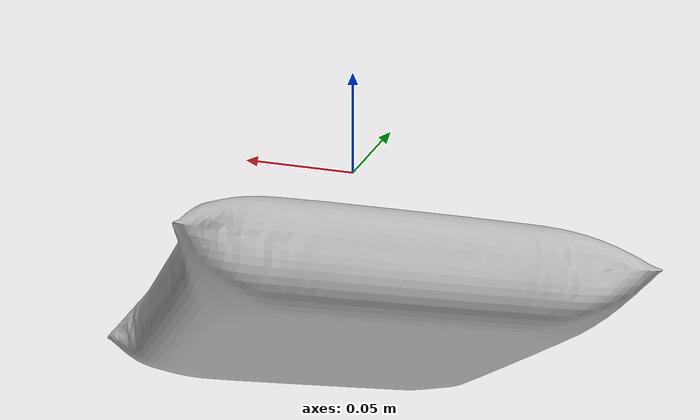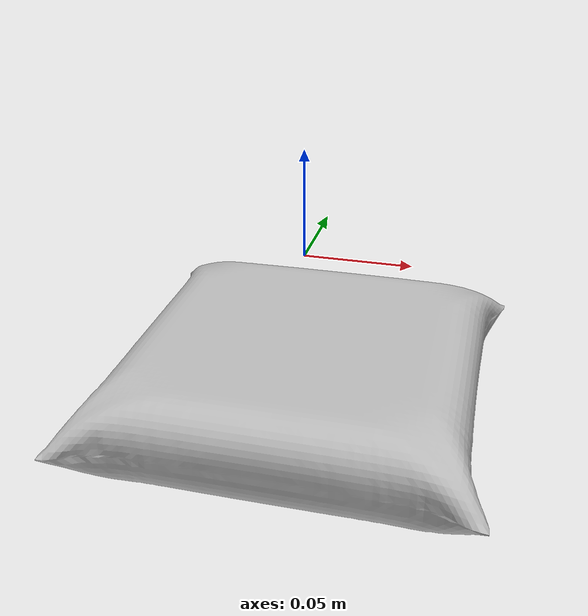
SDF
<?xml version='1.0'?>
<sdf version="1.4">
  <model name="pillow">
    <pose>0 0 0 0 0 0</pose>
    <static>false</static>
    <link name="link">
      <inertial>
        <mass>1.0</mass>
        <inertia> <!-- inertias are tricky to compute -->
          <!-- http://gazebosim.org/tutorials?tut=inertia&cat=build_robot -->
          <ixx>0.002083</ixx>       <!-- for a box: ixx = 0.083 * mass * (y*y + z*z) -->
          <ixy>0.0</ixy>         <!-- for a box: ixy = 0 -->
          <ixz>0.0</ixz>         <!-- for a box: ixz = 0 -->
          <iyy>0.002083</iyy>       <!-- for a box: iyy = 0.083 * mass * (x*x + z*z) -->
          <iyz>0.0</iyz>         <!-- for a box: iyz = 0 -->
          <izz>0.00375</izz>       <!-- for a box: izz = 0.083 * mass * (x*x + y*y) -->
        </inertia>
      </inertial>
      <collision name="body">
        <pose>0 0 0 0 0 0</pose>
        <geometry>
          <mesh>
            <uri>model://pillow/meshes/pillow.stl</uri>
            <scale> 0.1 0.1 0.1</scale>
          </mesh>
        </geometry>
      </collision>
      <visual name="body">
        <pose>0 0 0 0 0 0</pose>
        <geometry>
          <mesh>
            <uri>model://pillow/meshes/pillow.stl</uri>
            <scale> 0.1 0.1 0.1</scale>
          </mesh>
        </geometry>
      </visual>
    </link>
  </model>
</sdf>
